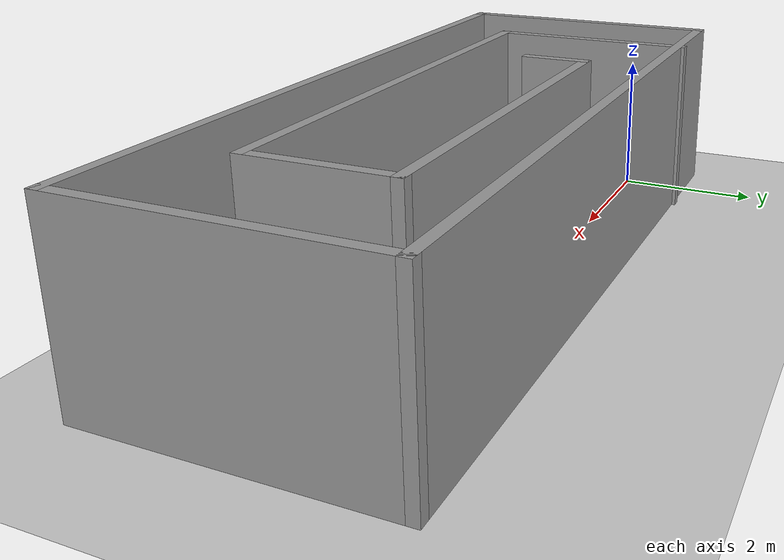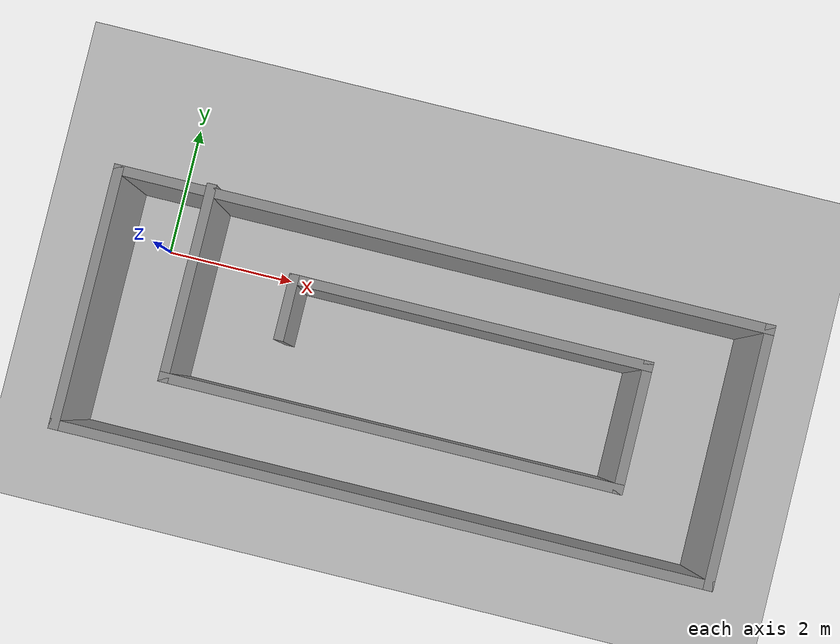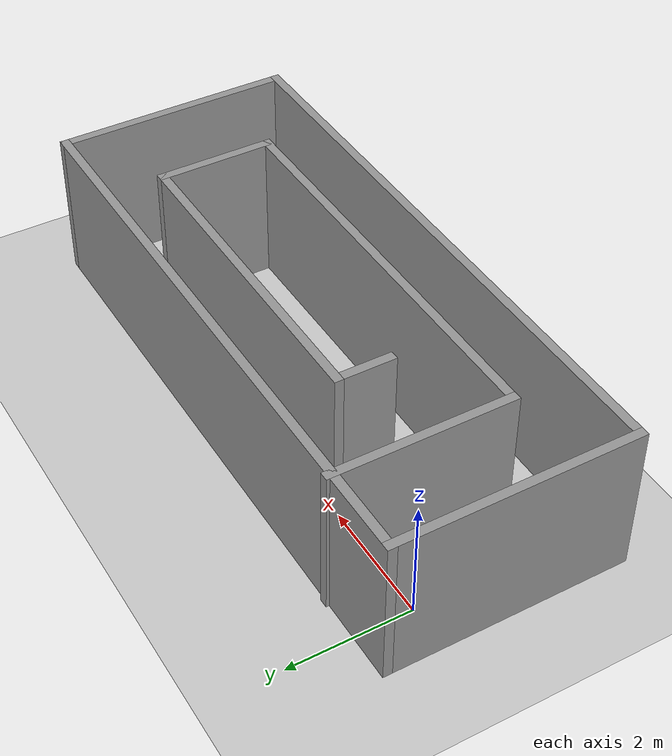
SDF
<sdf version="1.7">
 <world name="default">
  <light name="sun" type="directional">
   <pose>0 0 10 0 -0 0</pose>
   <diffuse>0.8 0.8 0.8 1</diffuse>
   <specular>0.2 0.2 0.2 1</specular>
   <attenuation>
    <range>1000</range>
    <constant>0.9</constant>
    <linear>0.01</linear>
    <quadratic>0.001</quadratic>
   </attenuation>
   <direction>-0.5 0.1 -0.9</direction>
   <spot><inner_angle>0</inner_angle><outer_angle>0</outer_angle><falloff>0</falloff></spot>
  </light>
  <model name="ground_plane">
   <static>1</static>
   <link name="link">
    <collision name="collision">
     <geometry><plane><normal>0 0 1</normal><size>100 100</size></plane></geometry>
     <surface>
      <contact><collide_bitmask>65535</collide_bitmask></contact>
      <friction><ode><mu>100</mu><mu2>50</mu2></ode></friction>
     </surface>
    </collision>
    <visual name="visual">
     <cast_shadows>0</cast_shadows>
     <geometry><plane><normal>0 0 1</normal><size>100 100</size></plane></geometry>
     <material>
      <script><uri>file://media/materials/scripts/gazebo.material</uri><name>Gazebo/Grey</name></script>
     </material>
    </visual>
   </link>
  </model>
  <gravity>0 0 -9.8</gravity>
  <magnetic_field>6e-06 2.3e-05 -4.2e-05</magnetic_field>
  <atmosphere type="adiabatic"/>
  <physics type="ode">
   <max_step_size>0.001</max_step_size>
   <real_time_factor>1</real_time_factor>
   <real_time_update_rate>1000</real_time_update_rate>
  </physics>
  <scene><ambient>0.4 0.4 0.4 1</ambient><background>0.7 0.7 0.7 1</background><shadows>1</shadows></scene>
  <audio><device>default</device></audio>
  <spherical_coordinates>
   <surface_model>EARTH_WGS84</surface_model>
   <latitude_deg>0</latitude_deg>
   <longitude_deg>0</longitude_deg>
   <elevation>0</elevation>
   <heading_deg>0</heading_deg>
  </spherical_coordinates>
  <model name="Untitled123">
   <pose>4.24866 0.277177 0 0 -0 0</pose>
   <link name="Wall_24">
    <collision name="Wall_24_Collision">
     <geometry><box><size>4 0.15 2.5</size></box></geometry>
     <pose>0 0 1.25 0 -0 0</pose>
    </collision>
    <visual name="Wall_24_Visual">
     <pose>0 0 1.25 0 -0 0</pose>
     <geometry><box><size>4 0.15 2.5</size></box></geometry>
     <material>
      <script><uri>file://media/materials/scripts/gazebo.material</uri><name>Gazebo/Grey</name></script>
      <ambient>1 1 1 1</ambient>
     </material>
     <meta><layer>0</layer></meta>
    </visual>
    <pose>-4.925 -1.3275 0 0 -0 -1.5708</pose>
   </link>
   <link name="Wall_25">
    <collision name="Wall_25_Collision">
     <geometry><box><size>10 0.15 2.5</size></box></geometry>
     <pose>0 0 1.25 0 -0 0</pose>
    </collision>
    <visual name="Wall_25_Visual">
     <pose>0 0 1.25 0 -0 0</pose>
     <geometry><box><size>10 0.15 2.5</size></box></geometry>
     <material>
      <script><uri>file://media/materials/scripts/gazebo.material</uri><name>Gazebo/Grey</name></script>
      <ambient>1 1 1 1</ambient>
     </material>
     <meta><layer>0</layer></meta>
    </visual>
    <pose>-0 -3.2525 0 0 -0 0</pose>
   </link>
   <link name="Wall_26">
    <collision name="Wall_26_Collision">
     <geometry><box><size>4 0.15 2.5</size></box></geometry>
     <pose>0 0 1.25 0 -0 0</pose>
    </collision>
    <visual name="Wall_26_Visual">
     <pose>0 0 1.25 0 -0 0</pose>
     <geometry><box><size>4 0.15 2.5</size></box></geometry>
     <material>
      <script><uri>file://media/materials/scripts/gazebo.material</uri><name>Gazebo/Grey</name></script>
      <ambient>1 1 1 1</ambient>
     </material>
     <meta><layer>0</layer></meta>
    </visual>
    <pose>4.925 -1.3275 0 0 -0 1.5708</pose>
   </link>
   <link name="Wall_27">
    <collision name="Wall_27_Collision">
     <geometry><box><size>10 0.15 2.5</size></box></geometry>
     <pose>0 0 1.25 0 -0 0</pose>
    </collision>
    <visual name="Wall_27_Visual">
     <pose>0 0 1.25 0 -0 0</pose>
     <geometry><box><size>10 0.15 2.5</size></box></geometry>
     <material>
      <script><uri>file://media/materials/scripts/gazebo.material</uri><name>Gazebo/Grey</name></script>
      <ambient>1 1 1 1</ambient>
     </material>
     <meta><layer>0</layer></meta>
    </visual>
    <pose>-0 0.5975 0 0 -0 3.14159</pose>
   </link>
   <link name="Wall_30">
    <collision name="Wall_30_Collision">
     <geometry><box><size>3 0.15 2.5</size></box></geometry>
     <pose>0 0 1.25 0 -0 0</pose>
    </collision>
    <visual name="Wall_30_Visual">
     <pose>0 0 1.25 0 -0 0</pose>
     <geometry><box><size>3 0.15 2.5</size></box></geometry>
     <material>
      <script><uri>file://media/materials/scripts/gazebo.material</uri><name>Gazebo/Grey</name></script>
      <ambient>1 1 1 1</ambient>
     </material>
     <meta><layer>0</layer></meta>
    </visual>
    <pose>-3.535 -0.7775 0 0 -0 -1.5708</pose>
   </link>
   <link name="Wall_31">
    <collision name="Wall_31_Collision">
     <geometry><box><size>7 0.15 2.5</size></box></geometry>
     <pose>0 0 1.25 0 -0 0</pose>
    </collision>
    <visual name="Wall_31_Visual">
     <pose>0 0 1.25 0 -0 0</pose>
     <geometry><box><size>7 0.15 2.5</size></box></geometry>
     <material>
      <script><uri>file://media/materials/scripts/gazebo.material</uri><name>Gazebo/Grey</name></script>
      <ambient>1 1 1 1</ambient>
     </material>
     <meta><layer>0</layer></meta>
    </visual>
    <pose>-0.11 -2.2025 0 0 -0 0</pose>
   </link>
   <link name="Wall_32">
    <collision name="Wall_32_Collision">
     <geometry><box><size>2 0.15 2.5</size></box></geometry>
     <pose>0 0 1.25 0 -0 0</pose>
    </collision>
    <visual name="Wall_32_Visual">
     <pose>0 0 1.25 0 -0 0</pose>
     <geometry><box><size>2 0.15 2.5</size></box></geometry>
     <material>
      <script><uri>file://media/materials/scripts/gazebo.material</uri><name>Gazebo/Grey</name></script>
      <ambient>1 1 1 1</ambient>
     </material>
     <meta><layer>0</layer></meta>
    </visual>
    <pose>3.315 -1.2775 0 0 -0 1.5708</pose>
   </link>
   <link name="Wall_33">
    <collision name="Wall_33_Collision">
     <geometry><box><size>5.5 0.15 2.5</size></box></geometry>
     <pose>0 0 1.25 0 -0 0</pose>
    </collision>
    <visual name="Wall_33_Visual">
     <pose>0 0 1.25 0 -0 0</pose>
     <geometry><box><size>5.5 0.15 2.5</size></box></geometry>
     <material>
      <script><uri>file://media/materials/scripts/gazebo.material</uri><name>Gazebo/Grey</name></script>
      <ambient>1 1 1 1</ambient>
     </material>
     <meta><layer>0</layer></meta>
    </visual>
    <pose>0.64 -0.3525 0 0 -0 3.14159</pose>
   </link>
   <link name="Wall_34">
    <collision name="Wall_34_Collision">
     <geometry><box><size>1 0.15 2.5</size></box></geometry>
     <pose>0 0 1.25 0 -0 0</pose>
    </collision>
    <visual name="Wall_34_Visual">
     <pose>0 0 1.25 0 -0 0</pose>
     <geometry><box><size>1 0.15 2.5</size></box></geometry>
     <material>
      <script><uri>file://media/materials/scripts/gazebo.material</uri><name>Gazebo/Grey</name></script>
      <ambient>1 1 1 1</ambient>
     </material>
     <meta><layer>0</layer></meta>
    </visual>
    <pose>-2.035 -0.7775 0 0 -0 -1.5708</pose>
   </link>
   <static>1</static>
  </model>
 </world>
</sdf>
